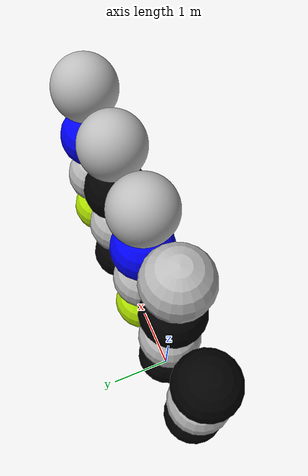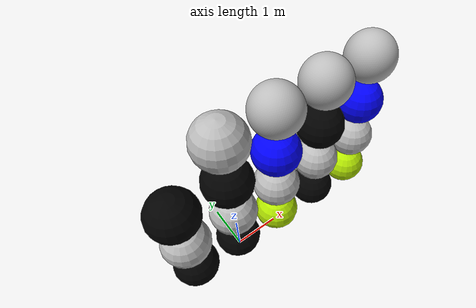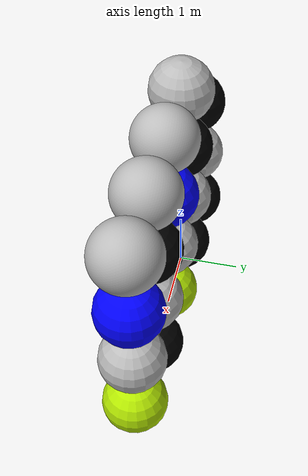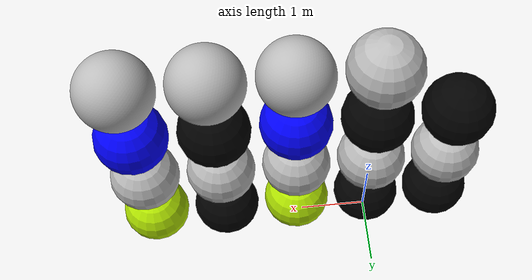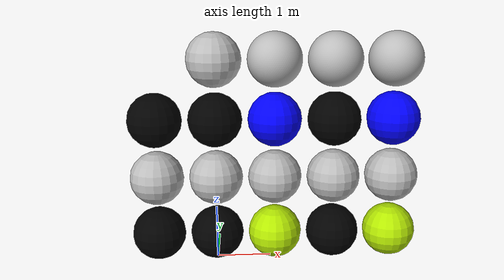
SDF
<?xml version="1.0" ?>
<sdf version="1.6">
  <world name="default">
    <scene>
      <ambient>0.4 0.4 0.4 1</ambient>
      <background>0 0 0 1</background>
      <shadows>false</shadows>
    </scene>
    <light type="directional" name="some_light">
      <diffuse>0.5 0.5 0.5 1.0</diffuse>
      <specular>1 1 1 1</specular>
      <direction>-1 -1 -1</direction>
    </light>
    <light type="directional" name="some_light2">
      <diffuse>0.5 0.5 0.5 0</diffuse>
      <specular>1 1 1 0</specular>
      <direction>-1 -1 1</direction>
    </light>

    <model name="visuals_sdf">
      <static>true</static>
      <link name="link">
        <visual name="ambient_only">
          <pose>0 0 0.5 0 0 0</pose>
          <geometry>
            <sphere>
              <radius>0.5</radius>
            </sphere>
          </geometry>
          <material>
            <ambient>0.5 0.75 0 1</ambient>
            <specular>0 0 0 1</specular>
            <diffuse>0 0 0 1</diffuse>
            <emissive>0 0 0 1</emissive>
          </material>
        </visual>
        <visual name="diffuse_only">
          <pose>1.1 0 0.5 0 0 0</pose>
          <geometry>
            <sphere>
              <radius>0.5</radius>
            </sphere>
          </geometry>
          <material>
            <ambient>0 0 0 1</ambient>
            <specular>0 0 0 1</specular>
            <diffuse>0.7 0.9 0 1</diffuse>
            <emissive>0 0 0 1</emissive>
          </material>
        </visual>
        <visual name="specular_only">
          <pose>2.2 0 0.5 0 0 0</pose>
          <geometry>
            <sphere>
              <radius>0.5</radius>
            </sphere>
          </geometry>
          <material>
            <ambient>0 0 0 1</ambient>
            <specular>1 1 1 1</specular>
            <diffuse>0 0 0 1</diffuse>
            <emissive>0 0 0 1</emissive>
          </material>
        </visual>
        <visual name="emissive_only">
          <pose>-1.1 0 0.5 0 0 0</pose>
          <geometry>
            <sphere>
              <radius>0.5</radius>
            </sphere>
          </geometry>
          <material>
            <ambient>0 0 0 1</ambient>
            <specular>0 0 0 1</specular>
            <diffuse>0 0 0 1</diffuse>
            <emissive>0.1 0 0.1 1</emissive>
          </material>
        </visual>
        <visual name="everything">
          <pose>3.3 0 0.5 0 0 0</pose>
          <geometry>
            <sphere>
              <radius>0.5</radius>
            </sphere>
          </geometry>
          <material>
            <ambient>0.5 0.75 0 1</ambient>
            <specular>0.5 0.5 0.5 128</specular>
            <diffuse>0.7 0.9 0 1</diffuse>
            <emissive>0.1 0 0.1 1</emissive>
          </material>
        </visual>
      </link>
    </model>
    <model name="visuals_ogre_script">
      <pose>0 0 1.1 0 0 0</pose>
      <static>true</static>
      <link name="link">
        <visual name="ambient_only">
          <pose>0 0 0.5 0 0 0</pose>
          <geometry>
            <sphere>
              <radius>0.5</radius>
            </sphere>
          </geometry>
          <material>
            <script>
              <uri>color_components.material</uri>
              <name>Tutorial/Ambient</name>
            </script>
          </material>
        </visual>
        <visual name="diffuse_only">
          <pose>1.1 0 0.5 0 0 0</pose>
          <geometry>
            <sphere>
              <radius>0.5</radius>
            </sphere>
          </geometry>
          <material>
            <script>
              <uri>color_components.material</uri>
              <name>Tutorial/Diffuse</name>
            </script>
          </material>
        </visual>
        <visual name="specular_only">
          <pose>2.2 0 0.5 0 0 0</pose>
          <geometry>
            <sphere>
              <radius>0.5</radius>
            </sphere>
          </geometry>
          <material>
            <script>
              <uri>color_components.material</uri>
              <name>Tutorial/Specular</name>
            </script>
          </material>
        </visual>
        <visual name="emissive_only">
          <pose>-1.1 0 0.5 0 0 0</pose>
          <geometry>
            <sphere>
              <radius>0.5</radius>
            </sphere>
          </geometry>
          <material>
            <script>
              <uri>color_components.material</uri>
              <name>Tutorial/Emissive</name>
            </script>
          </material>
        </visual>
        <visual name="everything">
          <pose>3.3 0 0.5 0 0 0</pose>
          <geometry>
            <sphere>
              <radius>0.5</radius>
            </sphere>
          </geometry>
          <material>
            <script>
              <uri>color_components.material</uri>
              <name>Tutorial/Everything</name>
            </script>
          </material>
        </visual>
      </link>
    </model>
    <model name="visuals_both_sdf_and_ogre_script">
      <pose>0 0 2.2 0 0 0</pose>
      <static>true</static>
      <link name="link">
        <visual name="ambient_only">
          <pose>0 0 0.5 0 0 0</pose>
          <geometry>
            <sphere>
              <radius>0.5</radius>
            </sphere>
          </geometry>
          <material>
            <script>
              <uri>color_components.material</uri>
              <name>Tutorial/Ambient</name>
            </script>
            <ambient>0 0 1 1</ambient>
            <specular>0 0 0 1</specular>
            <diffuse>0 0 0 1</diffuse>
            <emissive>0 0 0 1</emissive>
          </material>
        </visual>
        <visual name="diffuse_only">
          <pose>1.1 0 0.5 0 0 0</pose>
          <geometry>
            <sphere>
              <radius>0.5</radius>
            </sphere>
          </geometry>
          <material>
            <script>
              <uri>color_components.material</uri>
              <name>Tutorial/Diffuse</name>
            </script>
            <ambient>0 0 0 1</ambient>
            <specular>0 0 0 1</specular>
            <diffuse>0 0 1 1</diffuse>
            <emissive>0 0 0 1</emissive>
          </material>
        </visual>
        <visual name="specular_only">
          <pose>2.2 0 0.5 0 0 0</pose>
          <geometry>
            <sphere>
              <radius>0.5</radius>
            </sphere>
          </geometry>
          <material>
            <script>
              <uri>color_components.material</uri>
              <name>Tutorial/Specular</name>
            </script>
            <ambient>0 0 0 1</ambient>
            <specular>0 0 1 1</specular>
            <diffuse>0 0 0 1</diffuse>
            <emissive>0 0 0 1</emissive>
          </material>
        </visual>
        <visual name="emissive_only">
          <pose>-1.1 0 0.5 0 0 0</pose>
          <geometry>
            <sphere>
              <radius>0.5</radius>
            </sphere>
          </geometry>
          <material>
            <script>
              <uri>color_components.material</uri>
              <name>Tutorial/Emissive</name>
            </script>
            <ambient>0 0 0 1</ambient>
            <specular>0 0 0 1</specular>
            <diffuse>0 0 0 1</diffuse>
            <emissive>0 0 1 1</emissive>
          </material>
        </visual>
        <visual name="everything">
          <pose>3.3 0 0.5 0 0 0</pose>
          <geometry>
            <sphere>
              <radius>0.5</radius>
            </sphere>
          </geometry>
          <material>
            <script>
              <uri>color_components.material</uri>
              <name>Tutorial/Everything</name>
            </script>
            <ambient>0 0 1 1</ambient>
            <specular>0 0 1 1</specular>
            <diffuse>0 0 1 1</diffuse>
            <emissive>0 0 1 1</emissive>
          </material>
        </visual>
      </link>
    </model>

    <model name="visuals_default_color">
      <pose>0 0 3.3 0 0 0</pose>
      <static>true</static>
      <link name="link">
        <visual name="simple_sphere">
          <pose>0 0 0.5 0 0 0</pose>
          <geometry>
            <sphere>
              <radius>0.5</radius>
            </sphere>
          </geometry>
        </visual>
        <visual name="collada_sphere">
          <pose>1.1 0 0.5 0 0 0</pose>
          <geometry>
            <mesh>
              <uri>no_material_sphere.dae</uri>
              <scale>0.5 0.5 0.5 </scale>
            </mesh>
          </geometry>
        </visual>
        <visual name="stl_sphere">
          <pose>2.2 0 0.5 0 0 0</pose>
          <geometry>
            <mesh>
              <uri>sphere.stl</uri>
              <scale>0.5 0.5 0.5 </scale>
            </mesh>
          </geometry>
        </visual>
        <visual name="obj_sphere">
          <pose>3.3 0 0.5 0 0 0</pose>
          <geometry>
            <mesh>
              <uri>sphere.obj</uri>
              <scale>0.5 0.5 0.5 </scale>
            </mesh>
          </geometry>
        </visual>
      </link>
    </model>

  </world>
</sdf>
